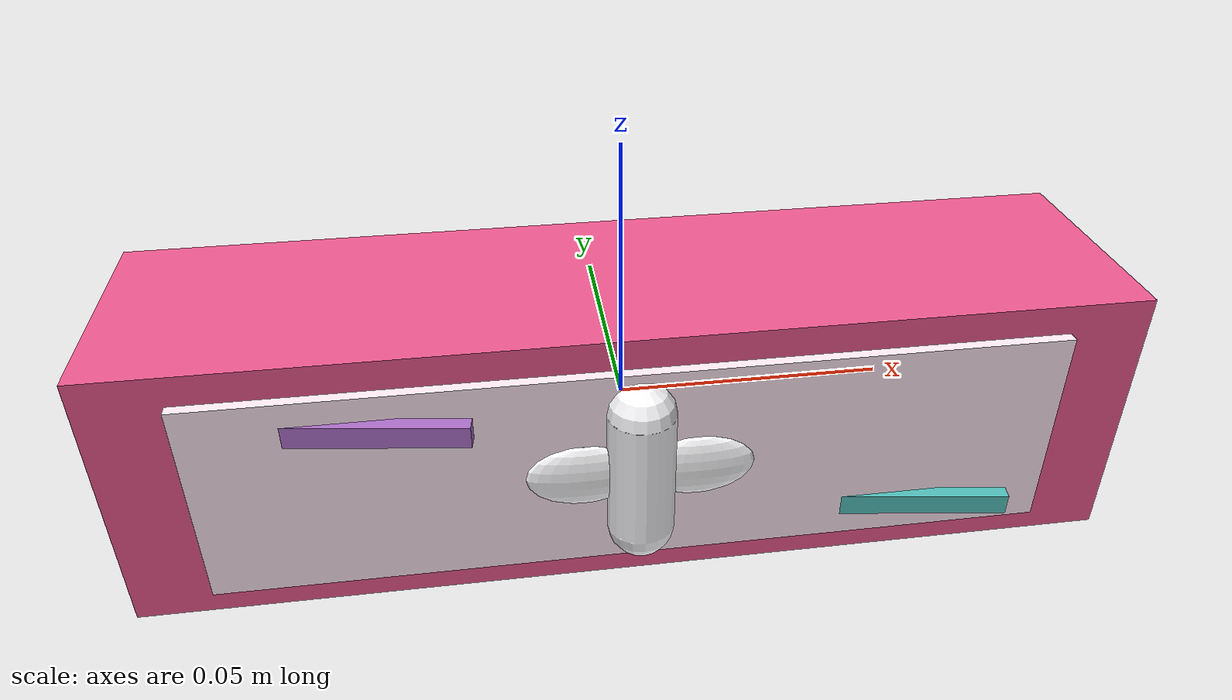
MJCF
<mujoco model="vla82_vla82_055">
  <compiler angle="radian"/>
  <asset>
    <texture name="source_texture" type="2d" file="appearance_texture.png"/>
    <material name="source_material" texture="source_texture" rgba="1 1 1 1"/>
  </asset>
  <default>
    <default class="visual"><geom contype="0" conaffinity="0" group="1" mass="0"/></default>
    <default class="collision"><geom contype="1" conaffinity="1" group="0" density="300" friction="0.65 0.006 0.0002" solref="0.02 1" solimp="0.9 0.95 0.001"/></default>
    <default class="region"><geom contype="0" conaffinity="0" group="1" rgba="0 1 0 0" mass="0"/></default>
  </default>
  <worldbody><body><body name="object">
    <geom name="hygiene_box_body" class="visual" type="box" size="0.090000 0.022000 0.025000" rgba="0.92 0.34 0.55 1"/>
    <geom name="hygiene_front_label" class="visual" type="box" pos="0 -0.023000 0" size="0.075600 0.0010 0.019500" rgba="1.00 0.92 0.96 1"/>
    <geom name="pad_center" class="visual" type="capsule" pos="0 -0.024300 0" size="0.0060 0.0120" rgba="0.99 0.99 1.00 1"/>
    <geom name="pad_left_wing" class="visual" type="ellipsoid" pos="-0.0100 -0.024400 0" size="0.0100 0.0018 0.0060" rgba="0.99 0.99 1.00 1"/>
    <geom name="pad_right_wing" class="visual" type="ellipsoid" pos="0.0100 -0.024400 0" size="0.0100 0.0018 0.0060" rgba="0.99 0.99 1.00 1"/>
    <geom name="package_wave_top" class="visual" type="box" pos="-0.0480 -0.024200 0.0130" size="0.0200 0.0013 0.0020" euler="0 0 -0.14" rgba="0.67 0.43 0.78 1"/>
    <geom name="package_wave_bottom" class="visual" type="box" pos="0.0480 -0.024200 -0.0130" size="0.0200 0.0013 0.0020" euler="0 0 -0.14" rgba="0.31 0.74 0.72 1"/>
    <geom name="legacy_visual_mass_carrier" class="visual" type="box" size="0.090000 0.022000 0.025000" mass="0.030000000" rgba="0 0 0 0"/>
    <geom name="collision" class="collision" type="box" size="0.090000 0.022000 0.025000"/>
    <geom name="reg_bbox" class="region" type="box" pos="0 0 0" size="0.090000 0.022000 0.025000"/>
  </body></body></worldbody>
  <actuator/>
</mujoco>
